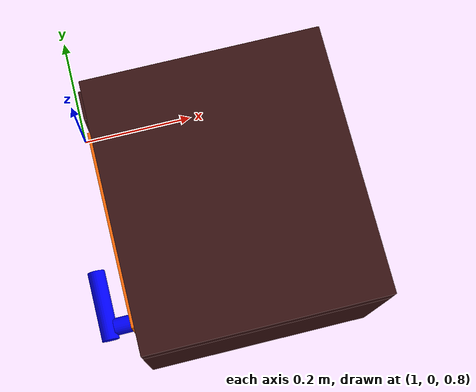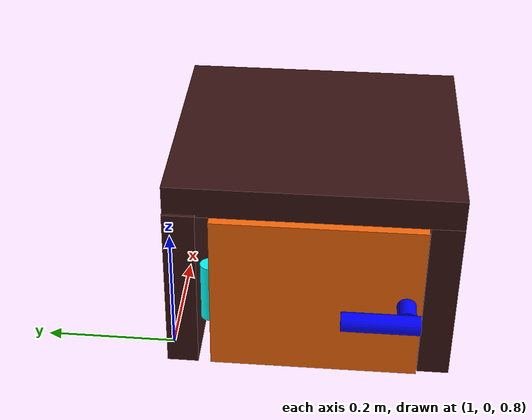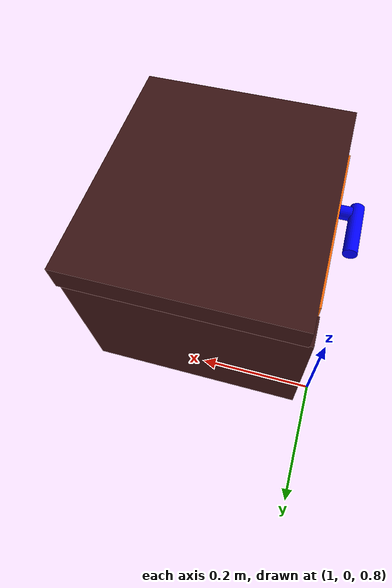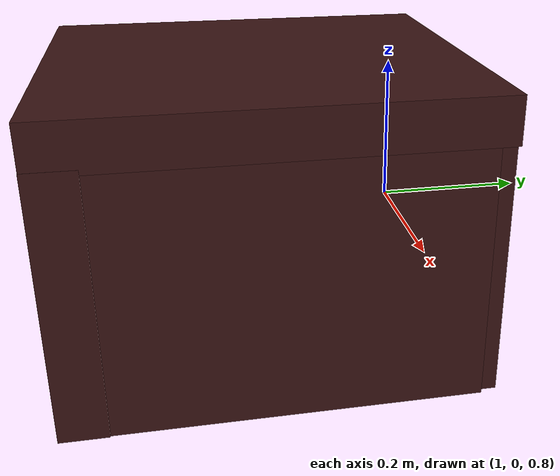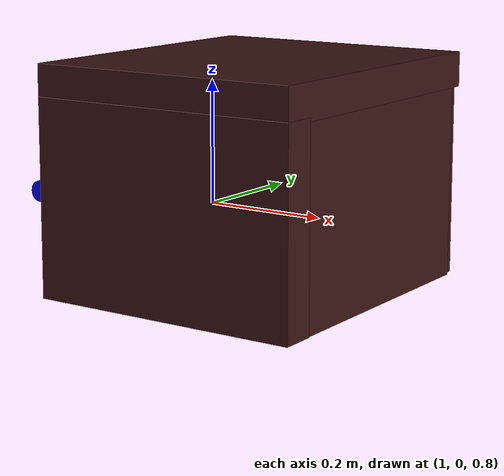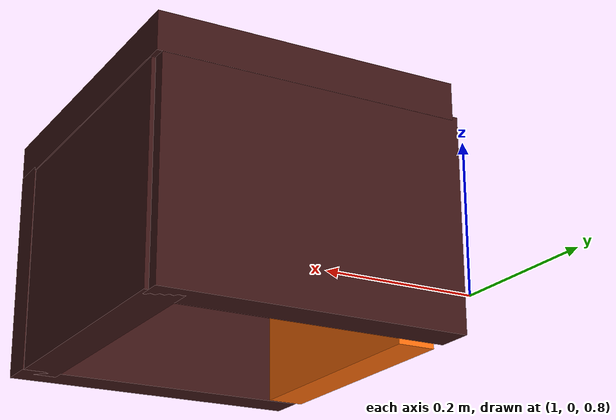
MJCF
<mujoco model="door_main">
    <compiler angle="radian" autolimits="true"/>
    <size/>
    <default/>
    <worldbody>
        <body name="door_main_footprint" pos="1.20 -0.210 0.745" quat="0.707388 0 0 -0.706825">
            <body name="door_container">
                <body name="wall1">
                    <inertial pos="0 0 0" quat="0 0 0 1" mass="1.8" diaginertia="0.012135 0.03576 0.024375"/>
                    <geom size="0.2 0.025 0.14" pos="-0.2 0.018 0.14" quat="0.707388 0 0 0.706825" type="box" rgba="0.23 0.08 0.08 1"/>
                </body>
                <body name="wall2">
                    <inertial pos="0 0 0" quat="0 0 0 1" mass="1.8" diaginertia="0.012135 0.03576 0.024375"/>
                    <geom size="0.2 0.025 0.14" pos="0.2 0.025 0.14" quat="0.707105 0 0 -0.707108" type="box" rgba="0.23 0.08 0.08 1"/>
                </body>
                <body name="wall3">
                    <inertial pos="0 0 0" quat="0 0 0 1" mass="1.8" diaginertia="0.012135 0.03576 0.024375"/>
                    <geom size="0.2 0.025 0.14" pos="-0.0069 0.1984 0.14" quat="1.32679e-06 0 0 1" type="box" rgba="0.23 0.08 0.08 1"/>
                </body>
                <body name="wall4">
                    <inertial pos="0 0 0" quat="0 0 0 1" mass="2.0" diaginertia="0.027083 0.0604167 0.034167"/>
                    <geom size="0.225 0.025 0.2" pos="-0.00029 0.02489 0.3" quat="0.707388 0.706825 0 0" type="box" rgba="0.23 0.08 0.08 1"/>
                </body>
            </body>
            <body name="door_main_area" pos="0 0 0.135" quat="0.707388 0 0 -0.706825">
                <body name="door_hinge" pos="0.1675 -0.15548 0" quat="0.707 0 0 0.707">
                    <inertial pos="0 0 0" quat="0 0 0 1" mass="0.25" diaginertia="0.000222 0.000222 0.000028"/>
                    <geom size="0.015 0.05" type="cylinder" condim="3" friction="1 1 1" rgba="0 1.0 1.0 1.0"/>
                    <joint armature="0.01" axis="0 0 1" damping="1" frictionloss="0.1" limited="true" name="door_hinge_joint" range="-1.57 0" type="hinge"/>
                    <body name="door" pos="0.1643 0.010 0" quat="1 0 0 0">
                        <inertial pos="0 0 0" quat="0 0 0 1" mass="1.6" diaginertia="0.010053 0.024117 0.01473"/>
                        <geom size="0.1643 0.025 0.135" type="box" rgba="1 0.423529 0.0392157 1"/>
                        <body name="door_handle_one" pos="0.140 -0.040 0" quat="0.707388 -0.706825 0 0">
                            <inertial pos="0 0 0" quat="0 0 0 1" mass="0.125" diaginertia="0.00002369 0.00002369 0.00001406"/>
                            <geom size="0.015 0.02" type="cylinder" rgba="0 0 1 1"/>
                            <body name="door_handle_two" pos="-0.040 0.0 -0.03" quat="0.707 0.0 0.707 0.0 ">
                                <inertial pos="0 0 0" quat="0 0 0 1" mass="0.250" diaginertia="0.0001828125 0.0001828125 0.00002812"/>
                                <geom size="0.015 0.06"  type="cylinder" rgba="0 0 1 1"/>
                            </body>
                        </body>
                    </body>
                </body>
            </body>
        </body>
    </worldbody>
    <equality/>
</mujoco>
